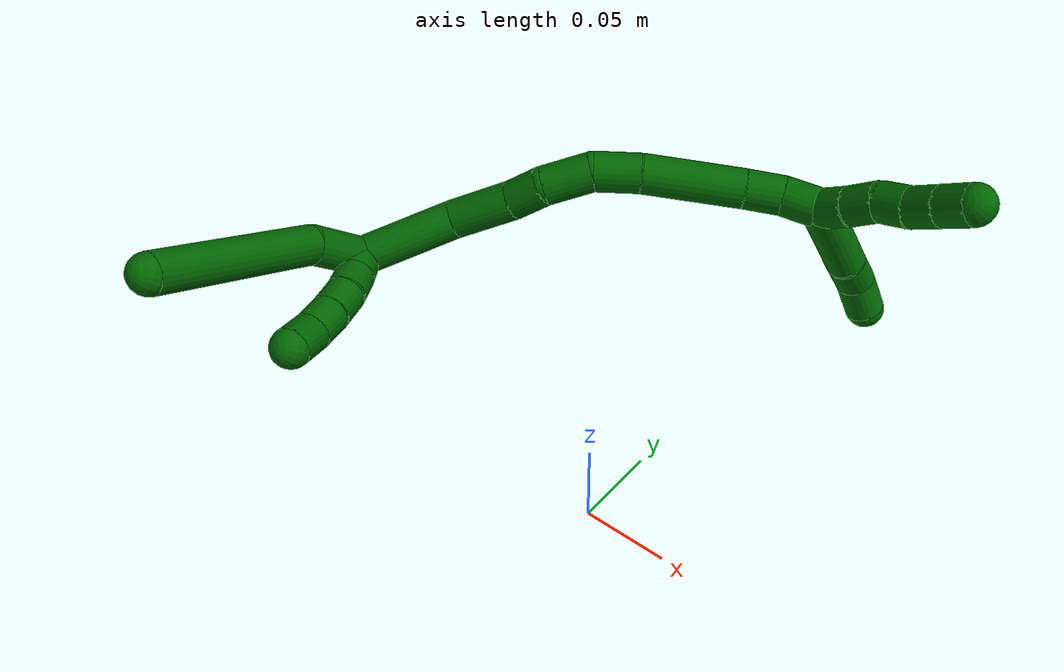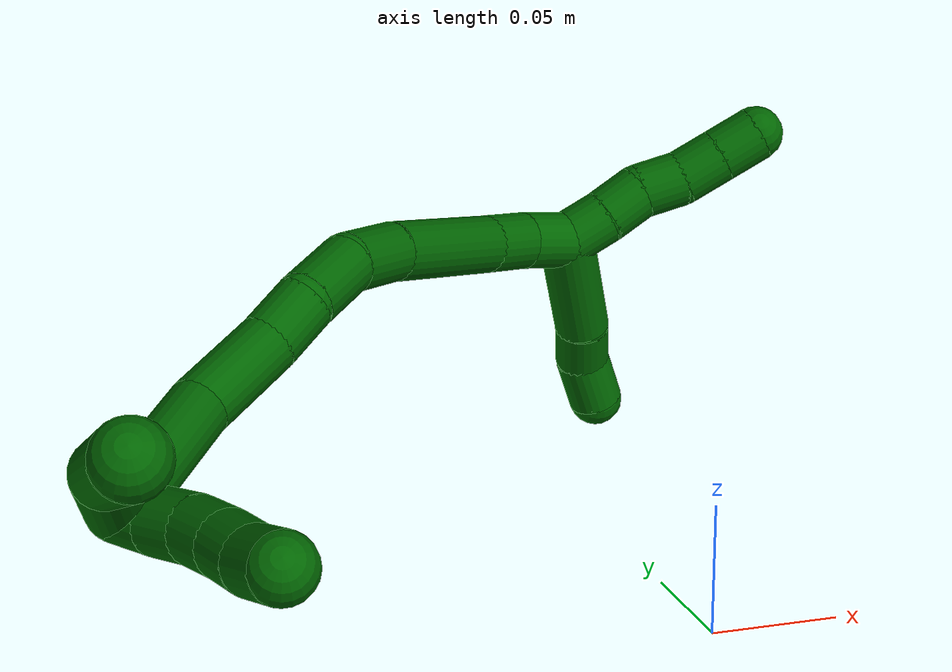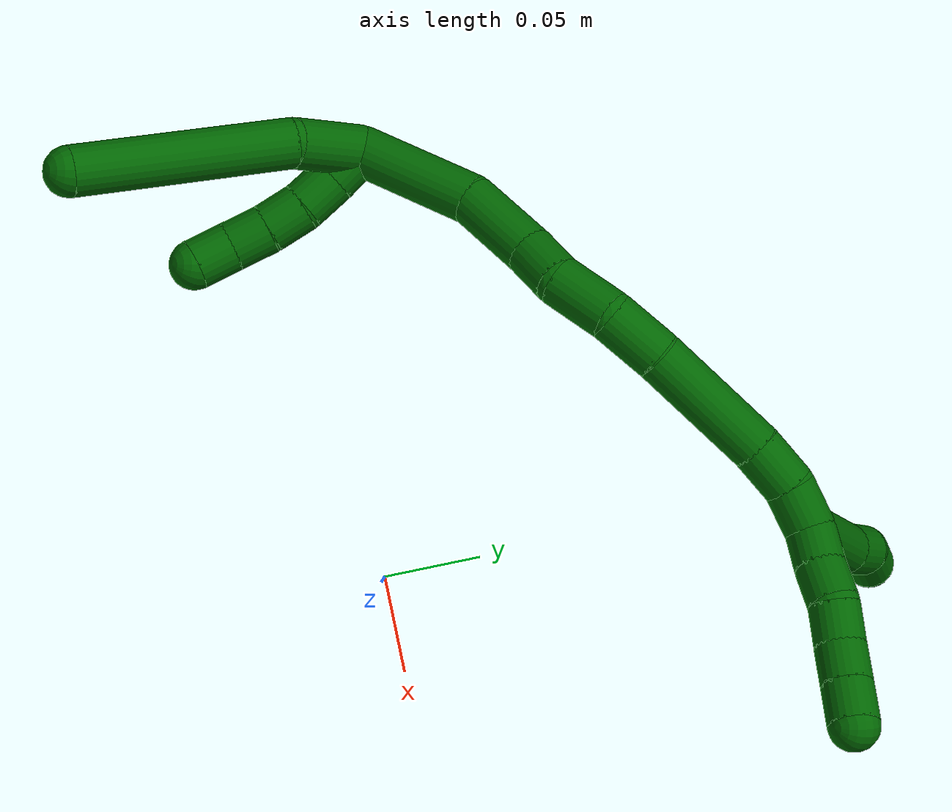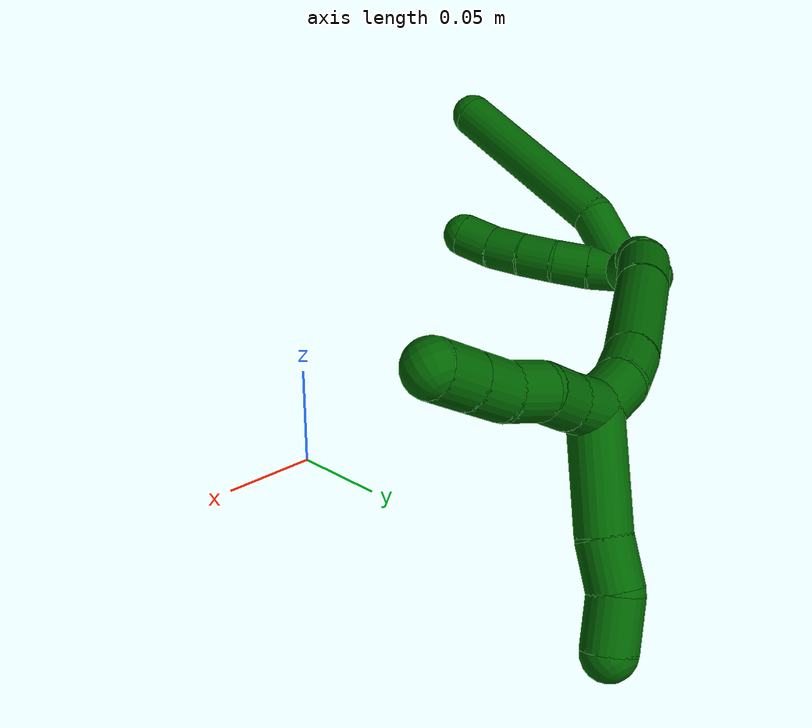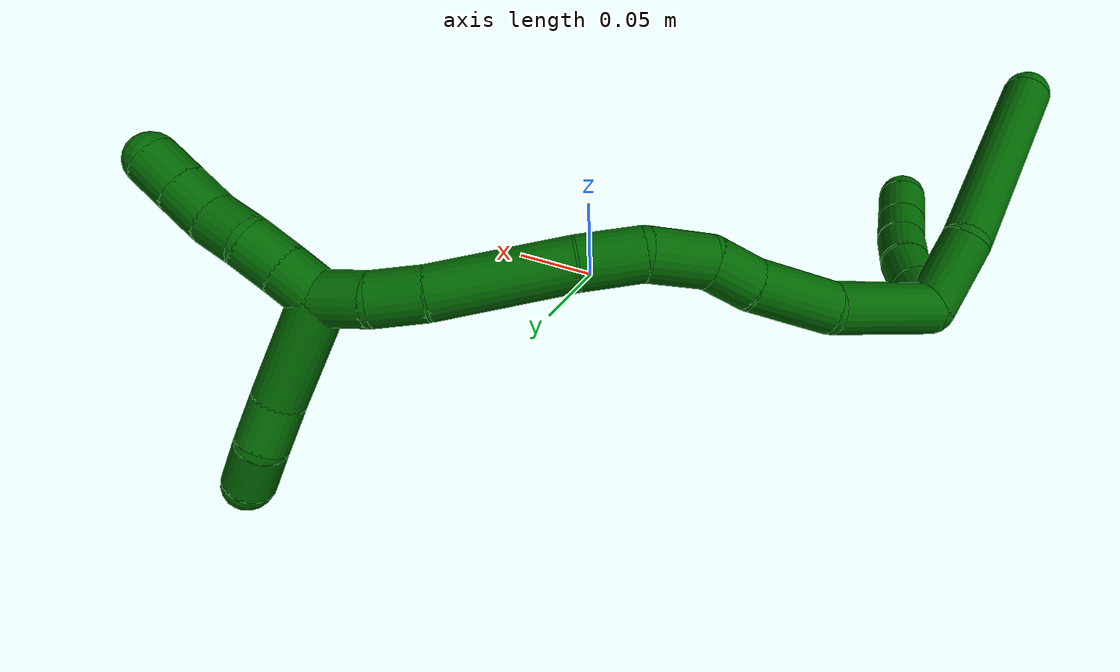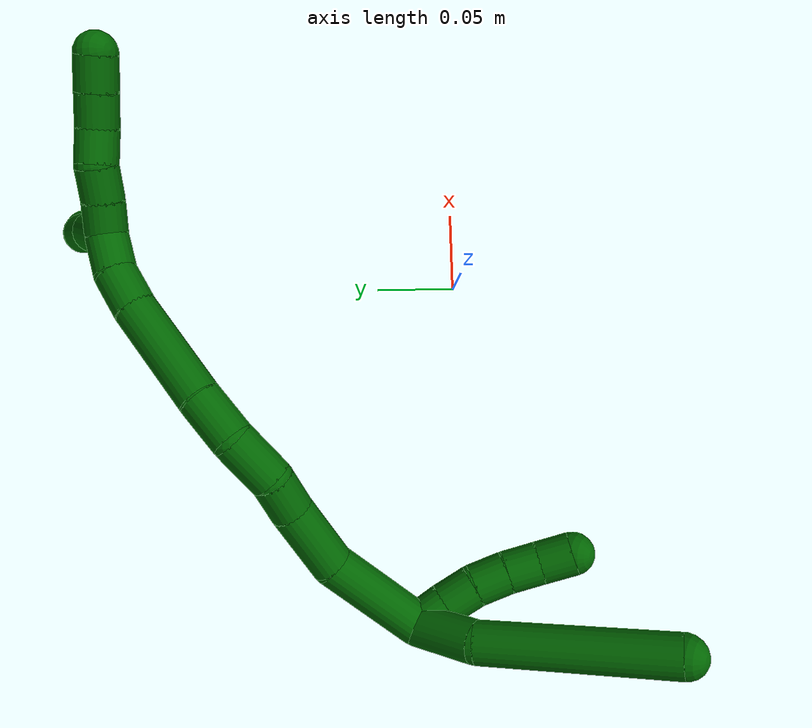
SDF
<sdf version="1.7">
 <world name="default">
  <model name="6">
   <static>0</static>
   <link name="6">
    <collision name="collision-cylinder-e_1_2_8">
     <pose>-0.000963 -0.000729 0.019898 0.036641 -0.048314 -0.000885</pose>
     <geometry><cylinder><radius>0.0125</radius><length>0.03987</length></cylinder></geometry>
     <surface>
      <friction><ode><mu>1.16</mu><mu2>1.16</mu2><slip1>0</slip1><slip2>0</slip2></ode></friction>
      <contact><ode><kp>1e+06</kp><kd>1</kd><max_vel>0</max_vel><min_depth>0.001</min_depth></ode></contact>
     </surface>
    </collision>
    <visual name="visual-cylinder-e_1_2_8">
     <pose>-0.000963 -0.000729 0.019898 0.036641 -0.048314 -0.000885</pose>
     <geometry><cylinder><radius>0.0125</radius><length>0.03987</length></cylinder></geometry>
     <material><ambient>0 0.392157 0.003922 1</ambient></material>
    </visual>
    <collision name="collision-cylinder-e_2_8_6">
     <pose>0.012541 -0.008715 0.092429 0.137007 0.265841 0.018347</pose>
     <geometry><cylinder><radius>0.0125</radius><length>0.11013</length></cylinder></geometry>
     <surface>
      <friction><ode><mu>1.16</mu><mu2>1.16</mu2><slip1>0</slip1><slip2>0</slip2></ode></friction>
      <contact><ode><kp>1e+06</kp><kd>1</kd><max_vel>0</max_vel><min_depth>0.001</min_depth></ode></contact>
     </surface>
    </collision>
    <visual name="visual-cylinder-e_2_8_6">
     <pose>0.012541 -0.008715 0.092429 0.137007 0.265841 0.018347</pose>
     <geometry><cylinder><radius>0.0125</radius><length>0.11013</length></cylinder></geometry>
     <material><ambient>0 0.392157 0.003922 1</ambient></material>
    </visual>
    <collision name="collision-cylinder-e_1_2_9">
     <pose>0.008035 0.001074 0.005856 -0.181392 0.933081 -0.09154</pose>
     <geometry><cylinder><radius>0.0125</radius><length>0.02</length></cylinder></geometry>
     <surface>
      <friction><ode><mu>1.16</mu><mu2>1.16</mu2><slip1>0</slip1><slip2>0</slip2></ode></friction>
      <contact><ode><kp>1e+06</kp><kd>1</kd><max_vel>0</max_vel><min_depth>0.001</min_depth></ode></contact>
     </surface>
    </collision>
    <visual name="visual-cylinder-e_1_2_9">
     <pose>0.008035 0.001074 0.005856 -0.181392 0.933081 -0.09154</pose>
     <geometry><cylinder><radius>0.0125</radius><length>0.02</length></cylinder></geometry>
     <material><ambient>0 0.392157 0.003922 1</ambient></material>
    </visual>
    <collision name="collision-cylinder-e_2_9_10">
     <pose>0.023418 0.003381 0.018381 -0.182862 0.825476 -0.080254</pose>
     <geometry><cylinder><radius>0.0125</radius><length>0.02</length></cylinder></geometry>
     <surface>
      <friction><ode><mu>1.16</mu><mu2>1.16</mu2><slip1>0</slip1><slip2>0</slip2></ode></friction>
      <contact><ode><kp>1e+06</kp><kd>1</kd><max_vel>0</max_vel><min_depth>0.001</min_depth></ode></contact>
     </surface>
    </collision>
    <visual name="visual-cylinder-e_2_9_10">
     <pose>0.023418 0.003381 0.018381 -0.182862 0.825476 -0.080254</pose>
     <geometry><cylinder><radius>0.0125</radius><length>0.02</length></cylinder></geometry>
     <material><ambient>0 0.392157 0.003922 1</ambient></material>
    </visual>
    <collision name="collision-cylinder-e_3_10_11">
     <pose>0.037655 0.004184 0.032286 0.059474 0.759904 0.023757</pose>
     <geometry><cylinder><radius>0.0125</radius><length>0.02</length></cylinder></geometry>
     <surface>
      <friction><ode><mu>1.16</mu><mu2>1.16</mu2><slip1>0</slip1><slip2>0</slip2></ode></friction>
      <contact><ode><kp>1e+06</kp><kd>1</kd><max_vel>0</max_vel><min_depth>0.001</min_depth></ode></contact>
     </surface>
    </collision>
    <visual name="visual-cylinder-e_3_10_11">
     <pose>0.037655 0.004184 0.032286 0.059474 0.759904 0.023757</pose>
     <geometry><cylinder><radius>0.0125</radius><length>0.02</length></cylinder></geometry>
     <material><ambient>0 0.392157 0.003922 1</ambient></material>
    </visual>
    <collision name="collision-cylinder-e_4_11_12">
     <pose>0.050934 0.002516 0.047114 0.161461 0.693268 0.058433</pose>
     <geometry><cylinder><radius>0.0125</radius><length>0.02</length></cylinder></geometry>
     <surface>
      <friction><ode><mu>1.16</mu><mu2>1.16</mu2><slip1>0</slip1><slip2>0</slip2></ode></friction>
      <contact><ode><kp>1e+06</kp><kd>1</kd><max_vel>0</max_vel><min_depth>0.001</min_depth></ode></contact>
     </surface>
    </collision>
    <visual name="visual-cylinder-e_4_11_12">
     <pose>0.050934 0.002516 0.047114 0.161461 0.693268 0.058433</pose>
     <geometry><cylinder><radius>0.0125</radius><length>0.02</length></cylinder></geometry>
     <material><ambient>0 0.392157 0.003922 1</ambient></material>
    </visual>
    <collision name="collision-cylinder-e_5_12_5">
     <pose>0.062818 0.001144 0.063061 0.016225 0.581536 0.004855</pose>
     <geometry><cylinder><radius>0.0125</radius><length>0.02</length></cylinder></geometry>
     <surface>
      <friction><ode><mu>1.16</mu><mu2>1.16</mu2><slip1>0</slip1><slip2>0</slip2></ode></friction>
      <contact><ode><kp>1e+06</kp><kd>1</kd><max_vel>0</max_vel><min_depth>0.001</min_depth></ode></contact>
     </surface>
    </collision>
    <visual name="visual-cylinder-e_5_12_5">
     <pose>0.062818 0.001144 0.063061 0.016225 0.581536 0.004855</pose>
     <geometry><cylinder><radius>0.0125</radius><length>0.02</length></cylinder></geometry>
     <material><ambient>0 0.392157 0.003922 1</ambient></material>
    </visual>
    <collision name="collision-cylinder-e_1_2_13">
     <pose>-0.004252 0.02699 -0.015762 -2.09937 -0.135208 0.234814</pose>
     <geometry><cylinder><radius>0.0125</radius><length>0.063087</length></cylinder></geometry>
     <surface>
      <friction><ode><mu>1.16</mu><mu2>1.16</mu2><slip1>0</slip1><slip2>0</slip2></ode></friction>
      <contact><ode><kp>1e+06</kp><kd>1</kd><max_vel>0</max_vel><min_depth>0.001</min_depth></ode></contact>
     </surface>
    </collision>
    <visual name="visual-cylinder-e_1_2_13">
     <pose>-0.004252 0.02699 -0.015762 -2.09937 -0.135208 0.234814</pose>
     <geometry><cylinder><radius>0.0125</radius><length>0.063087</length></cylinder></geometry>
     <material><ambient>0 0.392157 0.003922 1</ambient></material>
    </visual>
    <collision name="collision-cylinder-e_2_13_14">
     <pose>-0.007484 0.073799 -0.037153 -1.84749 0.049481 -0.065478</pose>
     <geometry><cylinder><radius>0.0125</radius><length>0.041256</length></cylinder></geometry>
     <surface>
      <friction><ode><mu>1.16</mu><mu2>1.16</mu2><slip1>0</slip1><slip2>0</slip2></ode></friction>
      <contact><ode><kp>1e+06</kp><kd>1</kd><max_vel>0</max_vel><min_depth>0.001</min_depth></ode></contact>
     </surface>
    </collision>
    <visual name="visual-cylinder-e_2_13_14">
     <pose>-0.007484 0.073799 -0.037153 -1.84749 0.049481 -0.065478</pose>
     <geometry><cylinder><radius>0.0125</radius><length>0.041256</length></cylinder></geometry>
     <material><ambient>0 0.392157 0.003922 1</ambient></material>
    </visual>
    <collision name="collision-cylinder-e_3_14_15">
     <pose>-0.00632 0.10529 -0.043965 -1.6719 0.012221 -0.013524</pose>
     <geometry><cylinder><radius>0.0125</radius><length>0.023465</length></cylinder></geometry>
     <surface>
      <friction><ode><mu>1.16</mu><mu2>1.16</mu2><slip1>0</slip1><slip2>0</slip2></ode></friction>
      <contact><ode><kp>1e+06</kp><kd>1</kd><max_vel>0</max_vel><min_depth>0.001</min_depth></ode></contact>
     </surface>
    </collision>
    <visual name="visual-cylinder-e_3_14_15">
     <pose>-0.00632 0.10529 -0.043965 -1.6719 0.012221 -0.013524</pose>
     <geometry><cylinder><radius>0.0125</radius><length>0.023465</length></cylinder></geometry>
     <material><ambient>0 0.392157 0.003922 1</ambient></material>
    </visual>
    <collision name="collision-cylinder-e_4_15_16">
     <pose>-0.006062 0.130925 -0.051773 -2.01374 0.007429 -0.011747</pose>
     <geometry><cylinder><radius>0.0125</radius><length>0.03091</length></cylinder></geometry>
     <surface>
      <friction><ode><mu>1.16</mu><mu2>1.16</mu2><slip1>0</slip1><slip2>0</slip2></ode></friction>
      <contact><ode><kp>1e+06</kp><kd>1</kd><max_vel>0</max_vel><min_depth>0.001</min_depth></ode></contact>
     </surface>
    </collision>
    <visual name="visual-cylinder-e_4_15_16">
     <pose>-0.006062 0.130925 -0.051773 -2.01374 0.007429 -0.011747</pose>
     <geometry><cylinder><radius>0.0125</radius><length>0.03091</length></cylinder></geometry>
     <material><ambient>0 0.392157 0.003922 1</ambient></material>
    </visual>
    <collision name="collision-cylinder-e_5_16_17">
     <pose>-0.002258 0.155892 -0.067383 -2.25559 0.254033 -0.525858</pose>
     <geometry><cylinder><radius>0.0125</radius><length>0.029355</length></cylinder></geometry>
     <surface>
      <friction><ode><mu>1.16</mu><mu2>1.16</mu2><slip1>0</slip1><slip2>0</slip2></ode></friction>
      <contact><ode><kp>1e+06</kp><kd>1</kd><max_vel>0</max_vel><min_depth>0.001</min_depth></ode></contact>
     </surface>
    </collision>
    <visual name="visual-cylinder-e_5_16_17">
     <pose>-0.002258 0.155892 -0.067383 -2.25559 0.254033 -0.525858</pose>
     <geometry><cylinder><radius>0.0125</radius><length>0.029355</length></cylinder></geometry>
     <material><ambient>0 0.392157 0.003922 1</ambient></material>
    </visual>
    <collision name="collision-cylinder-e_6_17_18">
     <pose>0.012187 0.188951 -0.09681 -2.31823 0.34352 -0.756338</pose>
     <geometry><cylinder><radius>0.0125</radius><length>0.063876</length></cylinder></geometry>
     <surface>
      <friction><ode><mu>1.16</mu><mu2>1.16</mu2><slip1>0</slip1><slip2>0</slip2></ode></friction>
      <contact><ode><kp>1e+06</kp><kd>1</kd><max_vel>0</max_vel><min_depth>0.001</min_depth></ode></contact>
     </surface>
    </collision>
    <visual name="visual-cylinder-e_6_17_18">
     <pose>0.012187 0.188951 -0.09681 -2.31823 0.34352 -0.756338</pose>
     <geometry><cylinder><radius>0.0125</radius><length>0.063876</length></cylinder></geometry>
     <material><ambient>0 0.392157 0.003922 1</ambient></material>
    </visual>
    <collision name="collision-cylinder-e_7_18_19">
     <pose>0.027906 0.219863 -0.123993 -2.22142 0.419435 -0.811372</pose>
     <geometry><cylinder><radius>0.0125</radius><length>0.024372</length></cylinder></geometry>
     <surface>
      <friction><ode><mu>1.16</mu><mu2>1.16</mu2><slip1>0</slip1><slip2>0</slip2></ode></friction>
      <contact><ode><kp>1e+06</kp><kd>1</kd><max_vel>0</max_vel><min_depth>0.001</min_depth></ode></contact>
     </surface>
    </collision>
    <visual name="visual-cylinder-e_7_18_19">
     <pose>0.027906 0.219863 -0.123993 -2.22142 0.419435 -0.811372</pose>
     <geometry><cylinder><radius>0.0125</radius><length>0.024372</length></cylinder></geometry>
     <material><ambient>0 0.392157 0.003922 1</ambient></material>
    </visual>
    <collision name="collision-cylinder-e_8_19_1">
     <pose>0.039925 0.237059 -0.135296 -2.07134 0.638504 -1.01733</pose>
     <geometry><cylinder><radius>0.0125</radius><length>0.02368</length></cylinder></geometry>
     <surface>
      <friction><ode><mu>1.16</mu><mu2>1.16</mu2><slip1>0</slip1><slip2>0</slip2></ode></friction>
      <contact><ode><kp>1e+06</kp><kd>1</kd><max_vel>0</max_vel><min_depth>0.001</min_depth></ode></contact>
     </surface>
    </collision>
    <visual name="visual-cylinder-e_8_19_1">
     <pose>0.039925 0.237059 -0.135296 -2.07134 0.638504 -1.01733</pose>
     <geometry><cylinder><radius>0.0125</radius><length>0.02368</length></cylinder></geometry>
     <material><ambient>0 0.392157 0.003922 1</ambient></material>
    </visual>
    <collision name="collision-cylinder-e_1_1_20">
     <pose>0.05904 0.240208 -0.162627 2.91739 0.476622 2.27371</pose>
     <geometry><cylinder><radius>0.0125</radius><length>0.052564</length></cylinder></geometry>
     <surface>
      <friction><ode><mu>1.16</mu><mu2>1.16</mu2><slip1>0</slip1><slip2>0</slip2></ode></friction>
      <contact><ode><kp>1e+06</kp><kd>1</kd><max_vel>0</max_vel><min_depth>0.001</min_depth></ode></contact>
     </surface>
    </collision>
    <visual name="visual-cylinder-e_1_1_20">
     <pose>0.05904 0.240208 -0.162627 2.91739 0.476622 2.27371</pose>
     <geometry><cylinder><radius>0.0125</radius><length>0.052564</length></cylinder></geometry>
     <material><ambient>0 0.392157 0.003922 1</ambient></material>
    </visual>
    <collision name="collision-cylinder-e_2_20_21">
     <pose>0.074848 0.232536 -0.195923 2.9102 0.333818 1.93389</pose>
     <geometry><cylinder><radius>0.0125</radius><length>0.022895</length></cylinder></geometry>
     <surface>
      <friction><ode><mu>1.16</mu><mu2>1.16</mu2><slip1>0</slip1><slip2>0</slip2></ode></friction>
      <contact><ode><kp>1e+06</kp><kd>1</kd><max_vel>0</max_vel><min_depth>0.001</min_depth></ode></contact>
     </surface>
    </collision>
    <visual name="visual-cylinder-e_2_20_21">
     <pose>0.074848 0.232536 -0.195923 2.9102 0.333818 1.93389</pose>
     <geometry><cylinder><radius>0.0125</radius><length>0.022895</length></cylinder></geometry>
     <material><ambient>0 0.392157 0.003922 1</ambient></material>
    </visual>
    <collision name="collision-cylinder-e_3_21_4">
     <pose>0.086242 0.227141 -0.215597 2.83311 0.672392 2.30438</pose>
     <geometry><cylinder><radius>0.0125</radius><length>0.02454</length></cylinder></geometry>
     <surface>
      <friction><ode><mu>1.16</mu><mu2>1.16</mu2><slip1>0</slip1><slip2>0</slip2></ode></friction>
      <contact><ode><kp>1e+06</kp><kd>1</kd><max_vel>0</max_vel><min_depth>0.001</min_depth></ode></contact>
     </surface>
    </collision>
    <visual name="visual-cylinder-e_3_21_4">
     <pose>0.086242 0.227141 -0.215597 2.83311 0.672392 2.30438</pose>
     <geometry><cylinder><radius>0.0125</radius><length>0.02454</length></cylinder></geometry>
     <material><ambient>0 0.392157 0.003922 1</ambient></material>
    </visual>
    <collision name="collision-cylinder-e_1_1_22">
     <pose>0.05071 0.254523 -0.138165 -1.38728 0.382059 -0.318864</pose>
     <geometry><cylinder><radius>0.0125</radius><length>0.02</length></cylinder></geometry>
     <surface>
      <friction><ode><mu>1.16</mu><mu2>1.16</mu2><slip1>0</slip1><slip2>0</slip2></ode></friction>
      <contact><ode><kp>1e+06</kp><kd>1</kd><max_vel>0</max_vel><min_depth>0.001</min_depth></ode></contact>
     </surface>
    </collision>
    <visual name="visual-cylinder-e_1_1_22">
     <pose>0.05071 0.254523 -0.138165 -1.38728 0.382059 -0.318864</pose>
     <geometry><cylinder><radius>0.0125</radius><length>0.02</length></cylinder></geometry>
     <material><ambient>0 0.392157 0.003922 1</ambient></material>
    </visual>
    <collision name="collision-cylinder-e_2_22_23">
     <pose>0.057356 0.273104 -0.13504 -1.4205 0.296081 -0.255102</pose>
     <geometry><cylinder><radius>0.0125</radius><length>0.02</length></cylinder></geometry>
     <surface>
      <friction><ode><mu>1.16</mu><mu2>1.16</mu2><slip1>0</slip1><slip2>0</slip2></ode></friction>
      <contact><ode><kp>1e+06</kp><kd>1</kd><max_vel>0</max_vel><min_depth>0.001</min_depth></ode></contact>
     </surface>
    </collision>
    <visual name="visual-cylinder-e_2_22_23">
     <pose>0.057356 0.273104 -0.13504 -1.4205 0.296081 -0.255102</pose>
     <geometry><cylinder><radius>0.0125</radius><length>0.02</length></cylinder></geometry>
     <material><ambient>0 0.392157 0.003922 1</ambient></material>
    </visual>
    <collision name="collision-cylinder-e_3_23_24">
     <pose>0.066001 0.290694 -0.13258 -1.4451 0.609741 -0.541226</pose>
     <geometry><cylinder><radius>0.0125</radius><length>0.02</length></cylinder></geometry>
     <surface>
      <friction><ode><mu>1.16</mu><mu2>1.16</mu2><slip1>0</slip1><slip2>0</slip2></ode></friction>
      <contact><ode><kp>1e+06</kp><kd>1</kd><max_vel>0</max_vel><min_depth>0.001</min_depth></ode></contact>
     </surface>
    </collision>
    <visual name="visual-cylinder-e_3_23_24">
     <pose>0.066001 0.290694 -0.13258 -1.4451 0.609741 -0.541226</pose>
     <geometry><cylinder><radius>0.0125</radius><length>0.02</length></cylinder></geometry>
     <material><ambient>0 0.392157 0.003922 1</ambient></material>
    </visual>
    <collision name="collision-cylinder-e_4_24_25">
     <pose>0.075735 0.30765 -0.129084 -1.29806 0.412419 -0.314779</pose>
     <geometry><cylinder><radius>0.0125</radius><length>0.02</length></cylinder></geometry>
     <surface>
      <friction><ode><mu>1.16</mu><mu2>1.16</mu2><slip1>0</slip1><slip2>0</slip2></ode></friction>
      <contact><ode><kp>1e+06</kp><kd>1</kd><max_vel>0</max_vel><min_depth>0.001</min_depth></ode></contact>
     </surface>
    </collision>
    <visual name="visual-cylinder-e_4_24_25">
     <pose>0.075735 0.30765 -0.129084 -1.29806 0.412419 -0.314779</pose>
     <geometry><cylinder><radius>0.0125</radius><length>0.02</length></cylinder></geometry>
     <material><ambient>0 0.392157 0.003922 1</ambient></material>
    </visual>
    <collision name="collision-cylinder-e_5_25_3">
     <pose>0.083737 0.325292 -0.12411 -1.29387 0.410754 -0.312153</pose>
     <geometry><cylinder><radius>0.0125</radius><length>0.02</length></cylinder></geometry>
     <surface>
      <friction><ode><mu>1.16</mu><mu2>1.16</mu2><slip1>0</slip1><slip2>0</slip2></ode></friction>
      <contact><ode><kp>1e+06</kp><kd>1</kd><max_vel>0</max_vel><min_depth>0.001</min_depth></ode></contact>
     </surface>
    </collision>
    <visual name="visual-cylinder-e_5_25_3">
     <pose>0.083737 0.325292 -0.12411 -1.29387 0.410754 -0.312153</pose>
     <geometry><cylinder><radius>0.0125</radius><length>0.02</length></cylinder></geometry>
     <material><ambient>0 0.392157 0.003922 1</ambient></material>
    </visual>
    <collision name="collision-sphere-3">
     <pose>0.08773 0.334111 -0.121603 0 -0 0</pose>
     <geometry><sphere><radius>0.0125</radius></sphere></geometry>
     <surface>
      <friction><ode><mu>1.16</mu><mu2>1.16</mu2><slip1>0</slip1><slip2>0</slip2></ode></friction>
      <contact><ode><kp>1e+06</kp><kd>1</kd><max_vel>0</max_vel><min_depth>0.001</min_depth></ode></contact>
     </surface>
    </collision>
    <visual name="visual-sphere-3">
     <pose>0.08773 0.334111 -0.121603 0 -0 0</pose>
     <geometry><sphere><radius>0.0125</radius></sphere></geometry>
     <material><ambient>0 0.392157 0.003922 1</ambient></material>
    </visual>
    <collision name="collision-sphere-25">
     <pose>0.079744 0.316473 -0.126617 0 -0 0</pose>
     <geometry><sphere><radius>0.0125</radius></sphere></geometry>
     <surface>
      <friction><ode><mu>1.16</mu><mu2>1.16</mu2><slip1>0</slip1><slip2>0</slip2></ode></friction>
      <contact><ode><kp>1e+06</kp><kd>1</kd><max_vel>0</max_vel><min_depth>0.001</min_depth></ode></contact>
     </surface>
    </collision>
    <visual name="visual-sphere-25">
     <pose>0.079744 0.316473 -0.126617 0 -0 0</pose>
     <geometry><sphere><radius>0.0125</radius></sphere></geometry>
     <material><ambient>0 0.392157 0.003922 1</ambient></material>
    </visual>
    <collision name="collision-sphere-24">
     <pose>0.071727 0.298827 -0.131552 0 -0 0</pose>
     <geometry><sphere><radius>0.0125</radius></sphere></geometry>
     <surface>
      <friction><ode><mu>1.16</mu><mu2>1.16</mu2><slip1>0</slip1><slip2>0</slip2></ode></friction>
      <contact><ode><kp>1e+06</kp><kd>1</kd><max_vel>0</max_vel><min_depth>0.001</min_depth></ode></contact>
     </surface>
    </collision>
    <visual name="visual-sphere-24">
     <pose>0.071727 0.298827 -0.131552 0 -0 0</pose>
     <geometry><sphere><radius>0.0125</radius></sphere></geometry>
     <material><ambient>0 0.392157 0.003922 1</ambient></material>
    </visual>
    <collision name="collision-sphere-23">
     <pose>0.060274 0.282561 -0.133608 0 -0 0</pose>
     <geometry><sphere><radius>0.0125</radius></sphere></geometry>
     <surface>
      <friction><ode><mu>1.16</mu><mu2>1.16</mu2><slip1>0</slip1><slip2>0</slip2></ode></friction>
      <contact><ode><kp>1e+06</kp><kd>1</kd><max_vel>0</max_vel><min_depth>0.001</min_depth></ode></contact>
     </surface>
    </collision>
    <visual name="visual-sphere-23">
     <pose>0.060274 0.282561 -0.133608 0 -0 0</pose>
     <geometry><sphere><radius>0.0125</radius></sphere></geometry>
     <material><ambient>0 0.392157 0.003922 1</ambient></material>
    </visual>
    <collision name="collision-sphere-22">
     <pose>0.054439 0.263647 -0.136472 0 -0 0</pose>
     <geometry><sphere><radius>0.0125</radius></sphere></geometry>
     <surface>
      <friction><ode><mu>1.16</mu><mu2>1.16</mu2><slip1>0</slip1><slip2>0</slip2></ode></friction>
      <contact><ode><kp>1e+06</kp><kd>1</kd><max_vel>0</max_vel><min_depth>0.001</min_depth></ode></contact>
     </surface>
    </collision>
    <visual name="visual-sphere-22">
     <pose>0.054439 0.263647 -0.136472 0 -0 0</pose>
     <geometry><sphere><radius>0.0125</radius></sphere></geometry>
     <material><ambient>0 0.392157 0.003922 1</ambient></material>
    </visual>
    <collision name="collision-sphere-4">
     <pose>0.093884 0.224226 -0.224743 0 -0 0</pose>
     <geometry><sphere><radius>0.0125</radius></sphere></geometry>
     <surface>
      <friction><ode><mu>1.16</mu><mu2>1.16</mu2><slip1>0</slip1><slip2>0</slip2></ode></friction>
      <contact><ode><kp>1e+06</kp><kd>1</kd><max_vel>0</max_vel><min_depth>0.001</min_depth></ode></contact>
     </surface>
    </collision>
    <visual name="visual-sphere-4">
     <pose>0.093884 0.224226 -0.224743 0 -0 0</pose>
     <geometry><sphere><radius>0.0125</radius></sphere></geometry>
     <material><ambient>0 0.392157 0.003922 1</ambient></material>
    </visual>
    <collision name="collision-sphere-21">
     <pose>0.078599 0.230055 -0.206451 0 -0 0</pose>
     <geometry><sphere><radius>0.0125</radius></sphere></geometry>
     <surface>
      <friction><ode><mu>1.16</mu><mu2>1.16</mu2><slip1>0</slip1><slip2>0</slip2></ode></friction>
      <contact><ode><kp>1e+06</kp><kd>1</kd><max_vel>0</max_vel><min_depth>0.001</min_depth></ode></contact>
     </surface>
    </collision>
    <visual name="visual-sphere-21">
     <pose>0.078599 0.230055 -0.206451 0 -0 0</pose>
     <geometry><sphere><radius>0.0125</radius></sphere></geometry>
     <material><ambient>0 0.392157 0.003922 1</ambient></material>
    </visual>
    <collision name="collision-sphere-20">
     <pose>0.071097 0.235016 -0.185396 0 -0 0</pose>
     <geometry><sphere><radius>0.0125</radius></sphere></geometry>
     <surface>
      <friction><ode><mu>1.16</mu><mu2>1.16</mu2><slip1>0</slip1><slip2>0</slip2></ode></friction>
      <contact><ode><kp>1e+06</kp><kd>1</kd><max_vel>0</max_vel><min_depth>0.001</min_depth></ode></contact>
     </surface>
    </collision>
    <visual name="visual-sphere-20">
     <pose>0.071097 0.235016 -0.185396 0 -0 0</pose>
     <geometry><sphere><radius>0.0125</radius></sphere></geometry>
     <material><ambient>0 0.392157 0.003922 1</ambient></material>
    </visual>
    <collision name="collision-sphere-11">
     <pose>0.044544 0.003753 0.039522 0 -0 0</pose>
     <geometry><sphere><radius>0.0125</radius></sphere></geometry>
     <surface>
      <friction><ode><mu>1.16</mu><mu2>1.16</mu2><slip1>0</slip1><slip2>0</slip2></ode></friction>
      <contact><ode><kp>1e+06</kp><kd>1</kd><max_vel>0</max_vel><min_depth>0.001</min_depth></ode></contact>
     </surface>
    </collision>
    <visual name="visual-sphere-11">
     <pose>0.044544 0.003753 0.039522 0 -0 0</pose>
     <geometry><sphere><radius>0.0125</radius></sphere></geometry>
     <material><ambient>0 0.392157 0.003922 1</ambient></material>
    </visual>
    <collision name="collision-sphere-10">
     <pose>0.030767 0.004615 0.02505 0 -0 0</pose>
     <geometry><sphere><radius>0.0125</radius></sphere></geometry>
     <surface>
      <friction><ode><mu>1.16</mu><mu2>1.16</mu2><slip1>0</slip1><slip2>0</slip2></ode></friction>
      <contact><ode><kp>1e+06</kp><kd>1</kd><max_vel>0</max_vel><min_depth>0.001</min_depth></ode></contact>
     </surface>
    </collision>
    <visual name="visual-sphere-10">
     <pose>0.030767 0.004615 0.02505 0 -0 0</pose>
     <geometry><sphere><radius>0.0125</radius></sphere></geometry>
     <material><ambient>0 0.392157 0.003922 1</ambient></material>
    </visual>
    <collision name="collision-sphere-6">
     <pose>0.027008 -0.015972 0.145062 0 -0 0</pose>
     <geometry><sphere><radius>0.0125</radius></sphere></geometry>
     <surface>
      <friction><ode><mu>1.16</mu><mu2>1.16</mu2><slip1>0</slip1><slip2>0</slip2></ode></friction>
      <contact><ode><kp>1e+06</kp><kd>1</kd><max_vel>0</max_vel><min_depth>0.001</min_depth></ode></contact>
     </surface>
    </collision>
    <visual name="visual-sphere-6">
     <pose>0.027008 -0.015972 0.145062 0 -0 0</pose>
     <geometry><sphere><radius>0.0125</radius></sphere></geometry>
     <material><ambient>0 0.392157 0.003922 1</ambient></material>
    </visual>
    <collision name="collision-sphere-9">
     <pose>0.016069 0.002148 0.011712 0 -0 0</pose>
     <geometry><sphere><radius>0.0125</radius></sphere></geometry>
     <surface>
      <friction><ode><mu>1.16</mu><mu2>1.16</mu2><slip1>0</slip1><slip2>0</slip2></ode></friction>
      <contact><ode><kp>1e+06</kp><kd>1</kd><max_vel>0</max_vel><min_depth>0.001</min_depth></ode></contact>
     </surface>
    </collision>
    <visual name="visual-sphere-9">
     <pose>0.016069 0.002148 0.011712 0 -0 0</pose>
     <geometry><sphere><radius>0.0125</radius></sphere></geometry>
     <material><ambient>0 0.392157 0.003922 1</ambient></material>
    </visual>
    <collision name="collision-sphere-2">
     <geometry><sphere><radius>0.0125</radius></sphere></geometry>
     <surface>
      <friction><ode><mu>1.16</mu><mu2>1.16</mu2><slip1>0</slip1><slip2>0</slip2></ode></friction>
      <contact><ode><kp>1e+06</kp><kd>1</kd><max_vel>0</max_vel><min_depth>0.001</min_depth></ode></contact>
     </surface>
    </collision>
    <visual name="visual-sphere-2">
     <geometry><sphere><radius>0.0125</radius></sphere></geometry>
     <material><ambient>0 0.392157 0.003922 1</ambient></material>
    </visual>
    <collision name="collision-sphere-19">
     <pose>0.032869 0.228718 -0.130733 0 -0 0</pose>
     <geometry><sphere><radius>0.0125</radius></sphere></geometry>
     <surface>
      <friction><ode><mu>1.16</mu><mu2>1.16</mu2><slip1>0</slip1><slip2>0</slip2></ode></friction>
      <contact><ode><kp>1e+06</kp><kd>1</kd><max_vel>0</max_vel><min_depth>0.001</min_depth></ode></contact>
     </surface>
    </collision>
    <visual name="visual-sphere-19">
     <pose>0.032869 0.228718 -0.130733 0 -0 0</pose>
     <geometry><sphere><radius>0.0125</radius></sphere></geometry>
     <material><ambient>0 0.392157 0.003922 1</ambient></material>
    </visual>
    <collision name="collision-sphere-8">
     <pose>-0.001926 -0.001459 0.039797 0 -0 0</pose>
     <geometry><sphere><radius>0.0125</radius></sphere></geometry>
     <surface>
      <friction><ode><mu>1.16</mu><mu2>1.16</mu2><slip1>0</slip1><slip2>0</slip2></ode></friction>
      <contact><ode><kp>1e+06</kp><kd>1</kd><max_vel>0</max_vel><min_depth>0.001</min_depth></ode></contact>
     </surface>
    </collision>
    <visual name="visual-sphere-8">
     <pose>-0.001926 -0.001459 0.039797 0 -0 0</pose>
     <geometry><sphere><radius>0.0125</radius></sphere></geometry>
     <material><ambient>0 0.392157 0.003922 1</ambient></material>
    </visual>
    <collision name="collision-sphere-12">
     <pose>0.057325 0.00128 0.054705 0 -0 0</pose>
     <geometry><sphere><radius>0.0125</radius></sphere></geometry>
     <surface>
      <friction><ode><mu>1.16</mu><mu2>1.16</mu2><slip1>0</slip1><slip2>0</slip2></ode></friction>
      <contact><ode><kp>1e+06</kp><kd>1</kd><max_vel>0</max_vel><min_depth>0.001</min_depth></ode></contact>
     </surface>
    </collision>
    <visual name="visual-sphere-12">
     <pose>0.057325 0.00128 0.054705 0 -0 0</pose>
     <geometry><sphere><radius>0.0125</radius></sphere></geometry>
     <material><ambient>0 0.392157 0.003922 1</ambient></material>
    </visual>
    <collision name="collision-sphere-5">
     <pose>0.068311 0.001009 0.071416 0 -0 0</pose>
     <geometry><sphere><radius>0.0125</radius></sphere></geometry>
     <surface>
      <friction><ode><mu>1.16</mu><mu2>1.16</mu2><slip1>0</slip1><slip2>0</slip2></ode></friction>
      <contact><ode><kp>1e+06</kp><kd>1</kd><max_vel>0</max_vel><min_depth>0.001</min_depth></ode></contact>
     </surface>
    </collision>
    <visual name="visual-sphere-5">
     <pose>0.068311 0.001009 0.071416 0 -0 0</pose>
     <geometry><sphere><radius>0.0125</radius></sphere></geometry>
     <material><ambient>0 0.392157 0.003922 1</ambient></material>
    </visual>
    <collision name="collision-sphere-13">
     <pose>-0.008504 0.05398 -0.031525 0 -0 0</pose>
     <geometry><sphere><radius>0.0125</radius></sphere></geometry>
     <surface>
      <friction><ode><mu>1.16</mu><mu2>1.16</mu2><slip1>0</slip1><slip2>0</slip2></ode></friction>
      <contact><ode><kp>1e+06</kp><kd>1</kd><max_vel>0</max_vel><min_depth>0.001</min_depth></ode></contact>
     </surface>
    </collision>
    <visual name="visual-sphere-13">
     <pose>-0.008504 0.05398 -0.031525 0 -0 0</pose>
     <geometry><sphere><radius>0.0125</radius></sphere></geometry>
     <material><ambient>0 0.392157 0.003922 1</ambient></material>
    </visual>
    <collision name="collision-sphere-14">
     <pose>-0.006463 0.093618 -0.042781 0 -0 0</pose>
     <geometry><sphere><radius>0.0125</radius></sphere></geometry>
     <surface>
      <friction><ode><mu>1.16</mu><mu2>1.16</mu2><slip1>0</slip1><slip2>0</slip2></ode></friction>
      <contact><ode><kp>1e+06</kp><kd>1</kd><max_vel>0</max_vel><min_depth>0.001</min_depth></ode></contact>
     </surface>
    </collision>
    <visual name="visual-sphere-14">
     <pose>-0.006463 0.093618 -0.042781 0 -0 0</pose>
     <geometry><sphere><radius>0.0125</radius></sphere></geometry>
     <material><ambient>0 0.392157 0.003922 1</ambient></material>
    </visual>
    <collision name="collision-sphere-15">
     <pose>-0.006177 0.116962 -0.045149 0 -0 0</pose>
     <geometry><sphere><radius>0.0125</radius></sphere></geometry>
     <surface>
      <friction><ode><mu>1.16</mu><mu2>1.16</mu2><slip1>0</slip1><slip2>0</slip2></ode></friction>
      <contact><ode><kp>1e+06</kp><kd>1</kd><max_vel>0</max_vel><min_depth>0.001</min_depth></ode></contact>
     </surface>
    </collision>
    <visual name="visual-sphere-15">
     <pose>-0.006177 0.116962 -0.045149 0 -0 0</pose>
     <geometry><sphere><radius>0.0125</radius></sphere></geometry>
     <material><ambient>0 0.392157 0.003922 1</ambient></material>
    </visual>
    <collision name="collision-sphere-16">
     <pose>-0.005947 0.144888 -0.058397 0 -0 0</pose>
     <geometry><sphere><radius>0.0125</radius></sphere></geometry>
     <surface>
      <friction><ode><mu>1.16</mu><mu2>1.16</mu2><slip1>0</slip1><slip2>0</slip2></ode></friction>
      <contact><ode><kp>1e+06</kp><kd>1</kd><max_vel>0</max_vel><min_depth>0.001</min_depth></ode></contact>
     </surface>
    </collision>
    <visual name="visual-sphere-16">
     <pose>-0.005947 0.144888 -0.058397 0 -0 0</pose>
     <geometry><sphere><radius>0.0125</radius></sphere></geometry>
     <material><ambient>0 0.392157 0.003922 1</ambient></material>
    </visual>
    <collision name="collision-sphere-17">
     <pose>0.00143 0.166895 -0.076368 0 -0 0</pose>
     <geometry><sphere><radius>0.0125</radius></sphere></geometry>
     <surface>
      <friction><ode><mu>1.16</mu><mu2>1.16</mu2><slip1>0</slip1><slip2>0</slip2></ode></friction>
      <contact><ode><kp>1e+06</kp><kd>1</kd><max_vel>0</max_vel><min_depth>0.001</min_depth></ode></contact>
     </surface>
    </collision>
    <visual name="visual-sphere-17">
     <pose>0.00143 0.166895 -0.076368 0 -0 0</pose>
     <geometry><sphere><radius>0.0125</radius></sphere></geometry>
     <material><ambient>0 0.392157 0.003922 1</ambient></material>
    </visual>
    <collision name="collision-sphere-18">
     <pose>0.022944 0.211007 -0.117252 0 -0 0</pose>
     <geometry><sphere><radius>0.0125</radius></sphere></geometry>
     <surface>
      <friction><ode><mu>1.16</mu><mu2>1.16</mu2><slip1>0</slip1><slip2>0</slip2></ode></friction>
      <contact><ode><kp>1e+06</kp><kd>1</kd><max_vel>0</max_vel><min_depth>0.001</min_depth></ode></contact>
     </surface>
    </collision>
    <visual name="visual-sphere-18">
     <pose>0.022944 0.211007 -0.117252 0 -0 0</pose>
     <geometry><sphere><radius>0.0125</radius></sphere></geometry>
     <material><ambient>0 0.392157 0.003922 1</ambient></material>
    </visual>
    <collision name="collision-sphere-1">
     <pose>0.046982 0.2454 -0.139859 0 -0 0</pose>
     <geometry><sphere><radius>0.0125</radius></sphere></geometry>
     <surface>
      <friction><ode><mu>1.16</mu><mu2>1.16</mu2><slip1>0</slip1><slip2>0</slip2></ode></friction>
      <contact><ode><kp>1e+06</kp><kd>1</kd><max_vel>0</max_vel><min_depth>0.001</min_depth></ode></contact>
     </surface>
    </collision>
    <visual name="visual-sphere-1">
     <pose>0.046982 0.2454 -0.139859 0 -0 0</pose>
     <geometry><sphere><radius>0.0125</radius></sphere></geometry>
     <material><ambient>0 0.392157 0.003922 1</ambient></material>
    </visual>
    <inertial>
     <pose>0.026706 0.120919 -0.048993 0 -0 0</pose>
     <mass>0.75</mass>
     <inertia>
      <ixx>0.000192</ixx>
      <ixy>0</ixy>
      <ixz>0</ixz>
      <iyy>0.00014</iyy>
      <iyz>0</iyz>
      <izz>-9.6e-05</izz>
     </inertia>
    </inertial>
   </link>
   <pose>-0.209804 0.034177 0.059629 0.789237 0.537722 -0.630591</pose>
  </model>
 </world>
</sdf>
